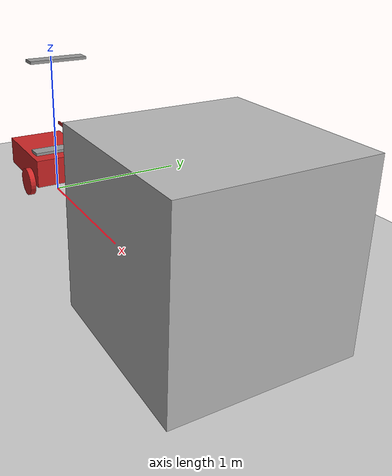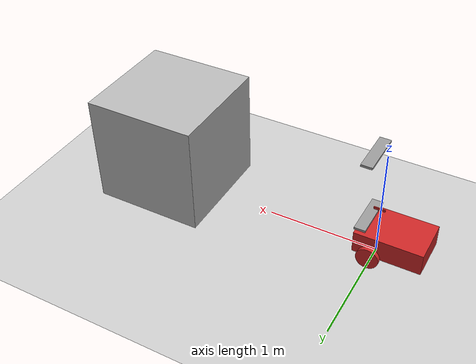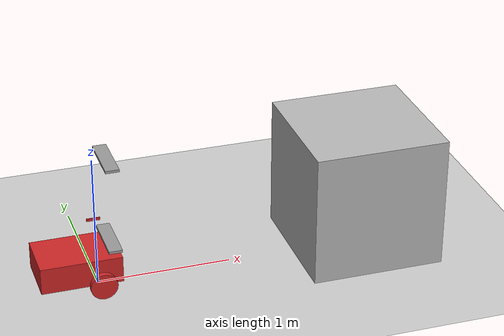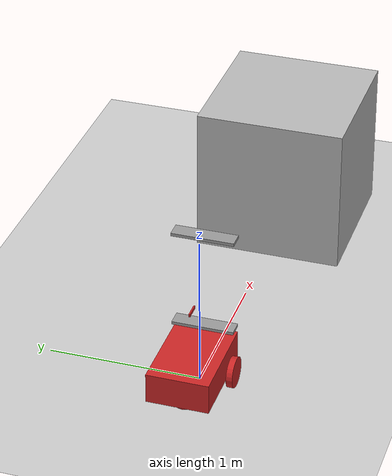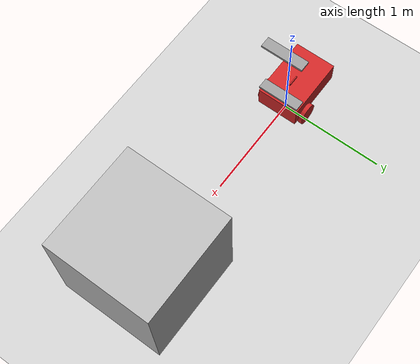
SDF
<?xml version="1.0"?>

<sdf version="1.5">
  <world name="default">
    <include>
      <uri>model://sun</uri>
    </include>
    <include>
      <uri>model://ground_plane</uri>
    </include>

    <model name='vehicle'>
      <pose>0 0 0 0 0 0</pose>

      <link name='chassis'>
        <pose>2 0 0.5 0 0 0</pose>
        <inertial>
          <mass>1.0</mass>
          <inertia>
            <ixx>0.1</ixx>
            <ixy>0</ixy>
            <ixz>0</ixz>
            <iyy>0.1</iyy>
            <iyz>0</iyz>
            <izz>0.1</izz>
          </inertia>
        </inertial>
        <visual name='visual'>
          <geometry>
            <box>
              <size>1 1 1</size>
            </box>
          </geometry>
        </visual>
        <collision name='collision'>
          <geometry>
            <box>
              <size>1 1 1</size>
            </box>
          </geometry>
        </collision>
      </link>
    </model>

    <include>
      <uri>model://robot1</uri>
    </include>

    <physics type="ode">
      <max_step_size>0.005</max_step_size>
      <real_time_update_rate>200</real_time_update_rate>

    </physics>
  </world>
</sdf>

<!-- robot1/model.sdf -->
<sdf version='1.6'>
  <model name='robot1'>
    <pose frame=''>0 0 0 0 0 0</pose>
    <link name='body'>
      <inertial>
        <mass>2.0</mass>
        <inertia>
          <ixx>0.05</ixx>
          <ixy>0.0</ixy>
          <ixz>0.0</ixz>
          <iyy>0.05</iyy>
          <iyz>0.0</iyz>
          <izz>0.05</izz>
        </inertia>
      </inertial>
      <collision name='body_collision'>
        <pose frame=''>0 0 0 0 0 0</pose>
        <geometry>
          <box>
            <size>0.6 0.4 0.2</size>
          </box>
        </geometry>
      </collision>
      <visual name='body_visual'>
        <pose frame=''>0 0 0 0 0 0</pose>
        <geometry>
          <box>
            <size>0.6 0.4 0.2</size>
          </box>
        </geometry>
        <material>
          <script>
            <uri>file://media/materials/scripts/gazebo.material</uri>
            <name>Gazebo/Red</name>
          </script>
        </material>
      </visual>
      <pose frame=''>-0.15 0 0.2 0 0 0</pose>
    </link>

    <link name='wheel_l'>
      <inertial>
        <mass>0.3</mass>
        <inertia>
          <ixx>0.01</ixx>
          <ixy>0.0</ixy>
          <ixz>0.0</ixz>
          <iyy>0.01</iyy>
          <iyz>0.0</iyz>
          <izz>0.01</izz>
        </inertia>
      </inertial>
      <collision name='wheel_l_collision'>
        <pose frame=''>0 0 0 0 0 0</pose>
        <geometry>
          <cylinder>
            <radius>0.1</radius>
            <length>0.04</length>
          </cylinder>
        </geometry>
      </collision>
      <visual name='wheel_l_visual'>
        <pose frame=''>0 0 0 0 0 0</pose>
        <geometry>
          <cylinder>
            <radius>0.1</radius>
            <length>0.04</length>
          </cylinder>
        </geometry>
        <material>
          <script>
            <uri>file://media/materials/scripts/gazebo.material</uri>
            <name>Gazebo/Red</name>
          </script>
        </material>
      </visual>
      <pose frame=''>0 0.22 0.1 0 1.5707 1.5707</pose>
    </link>
    <joint name='wheel_l_joint' type='revolute'>
      <parent>body</parent>
      <child>wheel_l</child>
      <pose>0 0 0 0 0 0</pose>
      <axis>
        <xyz>0 0 1</xyz>
      </axis>
    </joint>

    <link name='wheel_r'>
      <inertial>
        <mass>0.3</mass>
        <inertia>
          <ixx>0.01</ixx>
          <ixy>0.0</ixy>
          <ixz>0.0</ixz>
          <iyy>0.01</iyy>
          <iyz>0.0</iyz>
          <izz>0.01</izz>
        </inertia>
      </inertial>
      <collision name='wheel_r_collision'>
        <pose frame=''>0 0 0 0 0 0</pose>
        <geometry>
          <cylinder>
            <radius>0.1</radius>
            <length>0.04</length>
          </cylinder>
        </geometry>
      </collision>
      <visual name='wheel_r_visual'>
        <pose frame=''>0 0 0 0 0 0</pose>
        <geometry>
          <cylinder>
            <radius>0.1</radius>
            <length>0.04</length>
          </cylinder>
        </geometry>
        <material>
          <script>
            <uri>file://media/materials/scripts/gazebo.material</uri>
            <name>Gazebo/Red</name>
          </script>
        </material>
      </visual>
      <pose frame=''>0 -0.22 0.1 0 1.5707 1.5707</pose>
    </link>
    <joint name='wheel_r_joint' type='revolute'>
      <parent>body</parent>
      <child>wheel_r</child>
      <pose>0 0 0 0 0 0</pose>
      <axis>
        <xyz>0 0 1</xyz>
      </axis>
    </joint>

    <link name='rear_ball'>
      <inertial>
        <mass>0.1</mass>
        <inertia>
          <ixx>0.01</ixx>
          <ixy>0.0</ixy>
          <ixz>0.0</ixz>
          <iyy>0.01</iyy>
          <iyz>0.0</iyz>
          <izz>0.01</izz>
        </inertia>
      </inertial>
      <collision name='rear_ball_collision'>
        <pose frame=''>0 0 0 0 0 0</pose>
        <geometry>
          <sphere>
            <radius>0.1</radius>
          </sphere>
        </geometry>
      </collision>
      <visual name='rear_ball_visual'>
        <pose frame=''>0 0 0 0 0 0</pose>
        <geometry>
          <sphere>
            <radius>0.1</radius>
          </sphere>
        </geometry>
        <material>
          <script>
            <uri>file://media/materials/scripts/gazebo.material</uri>
            <name>Gazebo/Red</name>
          </script>
        </material>
      </visual>
      <pose frame=''>-0.3 0 0.1 0 0 0</pose>
    </link>
    <joint name='rear_ball_joint' type='fixed'>
      <parent>body</parent>
      <child>rear_ball</child>
      <pose>0 0 0 0 0 0</pose>
    </joint>

    <plugin name="differential_drive_controller" filename="libgazebo_ros_diff_drive.so">
      <alwaysOn>true</alwaysOn>
      <updateRate>20</updateRate>
      <left_joint>wheel_l_joint</left_joint>
      <right_joint>wheel_r_joint</right_joint>
      <wheel_separation>0.4</wheel_separation>
      <wheel_diameter>0.1</wheel_diameter>
      <max_wheel_acceleration>10</max_wheel_acceleration>
      <max_wheel_torque>1</max_wheel_torque>
      <publish_odom>true</publish_odom>
      <odometry_topic>odom1</odometry_topic>
      <odometry_frame>odom1</odometry_frame>
      <robot_base_frame>base_footprint1</robot_base_frame>
    </plugin>

    <!-- arm base -->
    <link name='arm_base'>
      <inertial>
        <mass>0.1</mass>
        <inertia>
          <ixx>0.01</ixx>
          <ixy>0.0</ixy>
          <ixz>0.0</ixz>
          <iyy>0.01</iyy>
          <iyz>0.0</iyz>
          <izz>0.01</izz>
        </inertia>
      </inertial>
      <collision name='arm_base_collision'>
        <pose frame=''>0 0 0 0 0 0</pose>
        <geometry>
          <box>
            <size>0.1 0.4 0.02</size>
          </box>
        </geometry>
      </collision>
      <visual name='arm_base_visual'>
        <pose frame=''>0 0 0 0 0 0</pose>
        <geometry>
          <box>
            <size>0.1 0.4 0.02</size>
          </box>
        </geometry>
        <material>
          <script>
            <uri>file://media/materials/scripts/gazebo.material</uri>
            <name>Gazebo/Gray</name>
          </script>
        </material>
      </visual>
      <pose frame=''>0.1 0 0.35 0 0 0</pose>
    </link>
    <joint name='arm_base_joint' type='fixed'>
      <parent>body</parent>
      <child>arm_base</child>
      <pose>0 0 0 0 0 0</pose>
    </joint>

    <!-- camera -->
    <link name='left_camera'>
      <inertial>
        <mass>0.1</mass>
        <inertia>
          <ixx>0.01</ixx>
          <ixy>0.0</ixy>
          <ixz>0.0</ixz>
          <iyy>0.01</iyy>
          <iyz>0.0</iyz>
          <izz>0.01</izz>
        </inertia>
      </inertial>
      <collision name='left_camera_collision'>
        <pose frame=''>0 0 0 0 0 0</pose>
        <geometry>
          <box>
            <size>0.1 0.03 0.01</size>
          </box>
        </geometry>
      </collision>
      <visual name='left_camera_visual'>
        <pose frame=''>0 0 0 0 0 0</pose>
        <geometry>
          <box>
            <size>0.01 0.1 0.02</size>
          </box>
        </geometry>
        <material>
          <script>
            <uri>file://media/materials/scripts/gazebo.material</uri>
            <name>Gazebo/Red</name>
          </script>
        </material>
      </visual>
      <pose frame=''>0 0.05 0.5 0 0 1.5707</pose>

      <sensor name="camera" type="depth">
        <always_on>true</always_on>
        <visualize>true</visualize>
        <update_rate>10</update_rate>
        <camera name="intel_realsense_r200">
          <horizontal_fov>1.02974</horizontal_fov>
          <image>
            <width>400</width>
            <height>300</height>
            <format>R8G8B8</format>
          </image>
          <depth_camera>
          </depth_camera>
          <clip>
            <near>0.02</near>
            <far>300</far>
          </clip>
          <noise>
            <type>gaussian</type>
            <mean>0.0</mean>
            <stddev>0.007</stddev>
          </noise>
        </camera>
        <plugin name="camera_driver" filename="libgazebo_ros_camera.so">
          <ros>
          </ros>
        </plugin>
      </sensor>
    </link>
    <joint name='left_camera_joint' type='fixed'>
      <parent>arm_base</parent>
      <child>left_camera</child>
      <pose>0 0 0 0 0 0</pose>
    </joint>

    <link name='elevator'>
      <inertial>
        <mass>0.1</mass>
        <inertia>
          <ixx>0.01</ixx>
          <ixy>0.0</ixy>
          <ixz>0.0</ixz>
          <iyy>0.01</iyy>
          <iyz>0.0</iyz>
          <izz>0.01</izz>
        </inertia>
      </inertial>
      <collision name='elevator_collision'>
        <pose frame=''>0 0 0 0 0 0</pose>
        <geometry>
          <box>
            <size>0.1 0.4 0.02</size>
          </box>
        </geometry>
      </collision>
      <visual name='elevator_visual'>
        <pose frame=''>0 0 0 0 0 0</pose>
        <geometry>
          <box>
            <size>0.1 0.4 0.02</size>
          </box>
        </geometry>
        <material>
          <script>
            <uri>file://media/materials/scripts/gazebo.material</uri>
            <name>Gazebo/Gray</name>
          </script>
        </material>
      </visual>
      <pose frame=''>0.1 0 1 0 0 0</pose>
    </link>
    <joint name='elevator_joint' type='prismatic'>
      <parent>body</parent>
      <child>elevator</child>
      <pose>0 0 0 0 0 0</pose>
      <axis>
        <xyz>1 0 0</xyz>
        <dynamics>
          <damping>0.0</damping>
          <friction>0.0</friction>
        </dynamics>
        <limit>
          <effort>1000.0</effort>
          <lower>-1</lower>
          <upper>5</upper>
          <velocity>30.0</velocity>
        </limit>
      </axis>
    </joint>

    <plugin name="linear_joint" filename="libst_gazebo_linear_joint.so">
    </plugin>

  </model>
</sdf>
